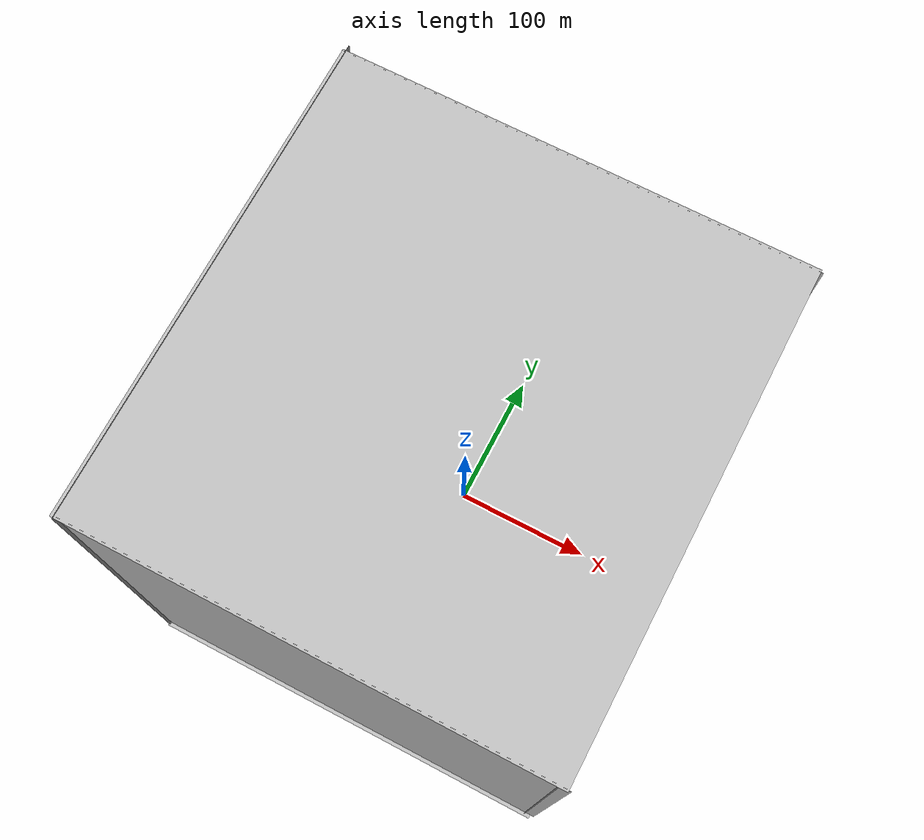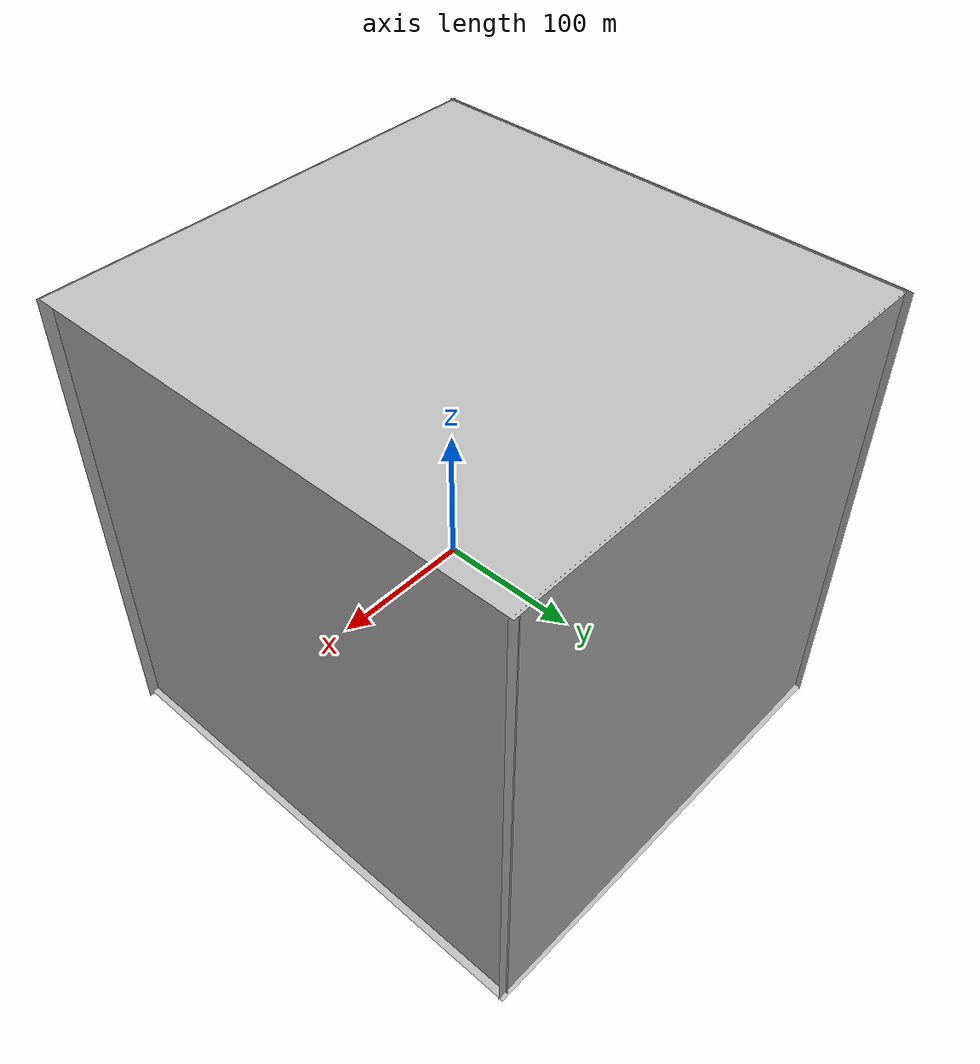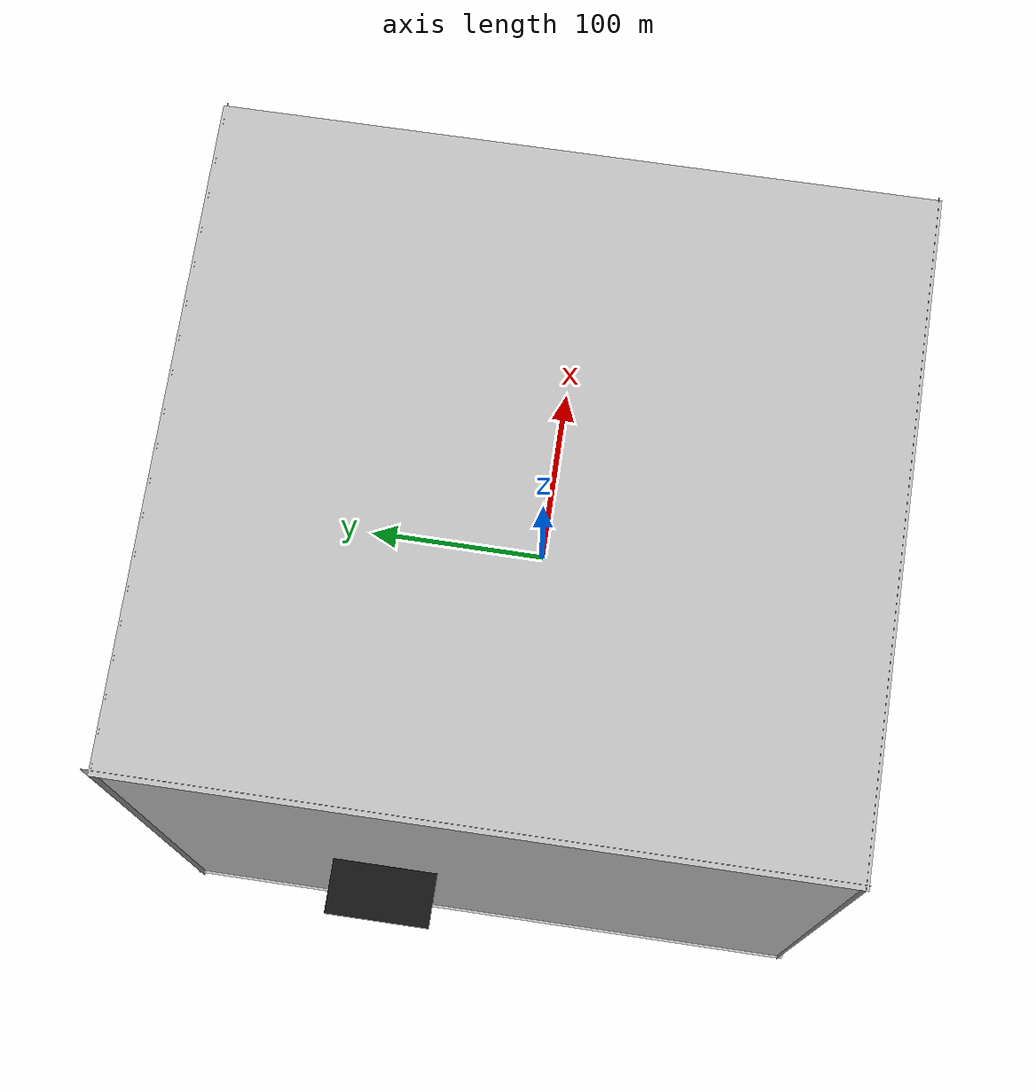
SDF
<sdf version="1.7">
 <world name="default">
  <light name="sun" type="directional">
   <pose>0 0 10 0 -0 0</pose>
   <diffuse>1 1 1 1</diffuse>
   <specular>0.2 0.2 0.2 1</specular>
   <attenuation>
    <range>1000</range>
    <constant>0.9</constant>
    <linear>0.01</linear>
    <quadratic>0.001</quadratic>
   </attenuation>
   <direction>-0.5 0.1 -0.9</direction>
   <spot><inner_angle>0</inner_angle><outer_angle>0</outer_angle><falloff>0</falloff></spot>
  </light>
  <gravity>0 0 -9.8</gravity>
  <magnetic_field>6e-06 2.3e-05 -4.2e-05</magnetic_field>
  <atmosphere type="adiabatic"/>
  <physics type="ode">
   <max_step_size>0.001</max_step_size>
   <real_time_factor>1</real_time_factor>
   <real_time_update_rate>1000</real_time_update_rate>
  </physics>
  <scene><ambient>0.4 0.4 0.4 1</ambient><background>0.7 0.7 0.7 1</background><shadows>1</shadows></scene>
  <audio><device>default</device></audio>
  <spherical_coordinates>
   <surface_model>EARTH_WGS84</surface_model>
   <latitude_deg>0</latitude_deg>
   <longitude_deg>0</longitude_deg>
   <elevation>0</elevation>
   <heading_deg>0</heading_deg>
  </spherical_coordinates>
  <model name="skybox">
   <static>1</static>
   <link name="body">
    <visual name="visual">
     <cast_shadows>0</cast_shadows>
     <material><lighting>0</lighting></material>
     <geometry><mesh><uri>model://skybox/meshes/skybox.dae</uri></mesh></geometry>
    </visual>
   </link>
   <pose>-11.3443 4.72296 0 0 -0 0</pose>
  </model>
  <model name="carpark">
   <static>1</static>
   <link name="carpark_link">
    <visual name="carpark_visual">
     <cast_shadows>0</cast_shadows>
     <geometry><mesh><uri>model://carpark/meshes/carpark.dae</uri></mesh></geometry>
    </visual>
    <collision name="carpark_collision_ground">
     <geometry><mesh><uri>model://carpark/meshes/carpark_floor.dae</uri></mesh></geometry>
    </collision>
    <collision name="carpark_collision_sidewalk">
     <geometry><mesh><uri>model://carpark/meshes/carpark_sidewalk.dae</uri></mesh></geometry>
    </collision>
    <collision name="carpark_collision_objects">
     <geometry><mesh><uri>model://carpark/meshes/carpark_objects.dae</uri></mesh></geometry>
    </collision>
   </link>
   <pose>-29.7493 1.15849 0 0 -0 0</pose>
  </model>
 </world>
</sdf>
